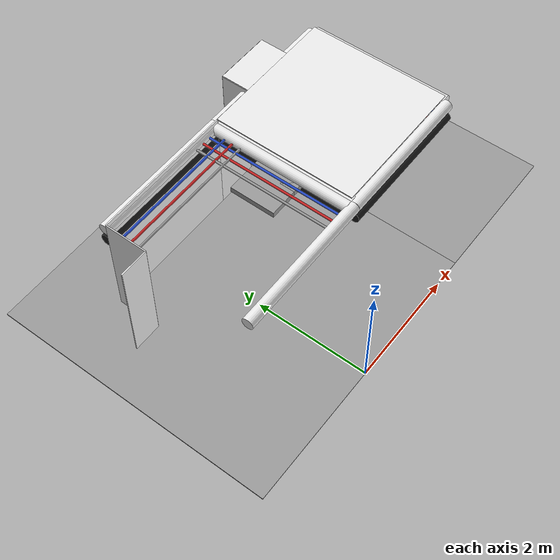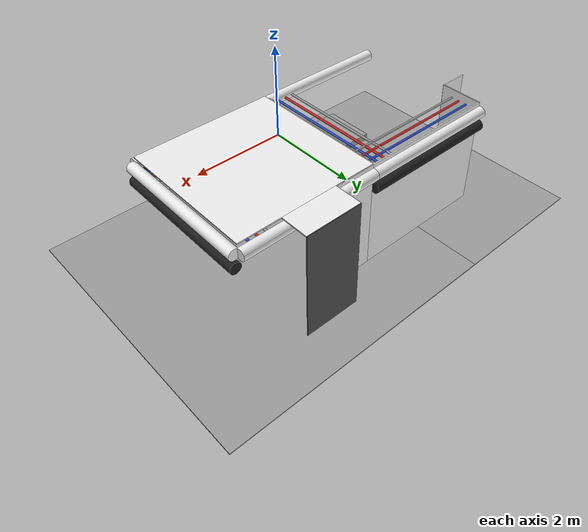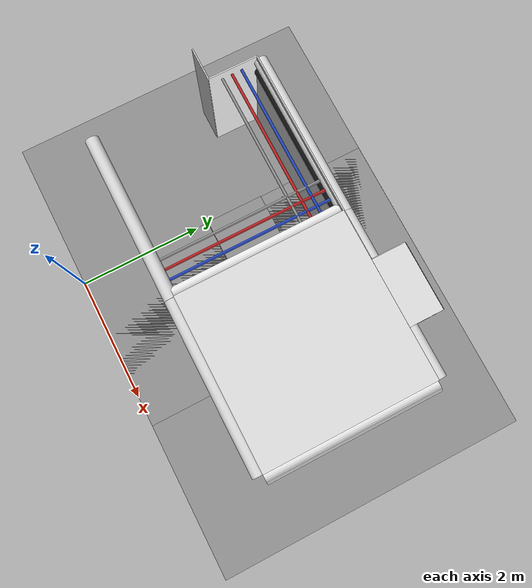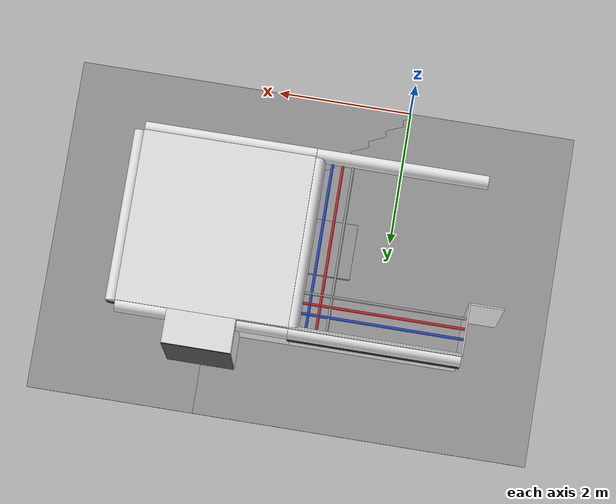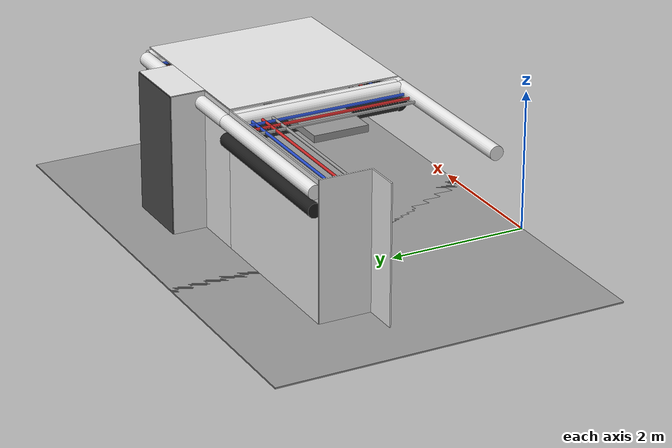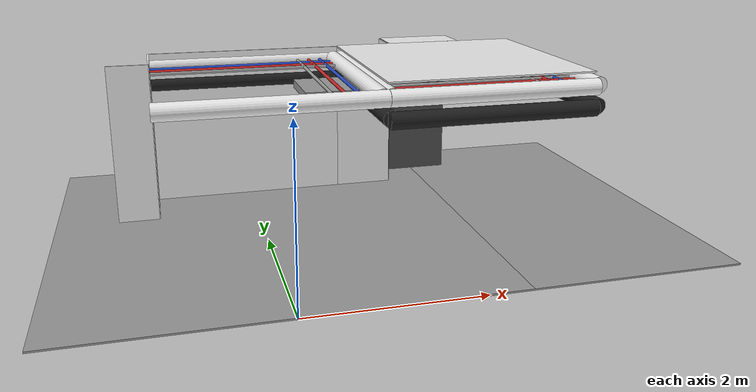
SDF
<sdf version="1.6">
 <world name="default">
  <model name="wall_front_0_1_0_2">
   <static>1</static>
   <pose>0.0 3.75 1.0 0.0 0.0 0.0</pose>
   <link name="link">
    <collision name="collision"><geometry><box><size>2.5 0.02 2.0</size></box></geometry></collision>
    <visual name="visual">
     <material>
      <script><name>Gazebo/White</name><uri>file://media/materials/scripts/gazebo.material</uri></script>
     </material>
     <geometry><box><size>2.5 0.02 2.0</size></box></geometry>
    </visual>
   </link>
  </model>
  <model name="ceiling_1_0_1_1_2">
   <pose>1.0 2.5 1.7 0.0 0.0 1.57</pose>
   <link name="link_1">
    <visual name="visual">
     <geometry><box><size>0.8 1 0.1</size></box></geometry>
     <material>
      <script><uri>file://media/materials/scripts/gazebo.material</uri><name>Gazebo/Grey</name></script>
     </material>
    </visual>
    <collision name="collision"><geometry><box><size>0.8 1 0.1</size></box></geometry></collision>
   </link>
   <static>1</static>
  </model>
  <model name="white_pipe_right_0_1_0_2">
   <static>1</static>
   <pose>0.0 2.5 1.84 0.0 0.0 0.0</pose>
   <link name="link_0">
    <visual name="visual">
     <pose>1.3 0 0 1.57 0 0</pose>
     <geometry><cylinder><radius>0.1</radius><length>2.5</length></cylinder></geometry>
     <material>
      <script><uri>file://media/materials/scripts/gazebo.material</uri><name>Gazebo/White</name></script>
     </material>
    </visual>
    <collision name="collision">
     <pose>1.3 0 0 1.57 0 0</pose>
     <geometry><cylinder><radius>0.1</radius><length>2.5</length></cylinder></geometry>
    </collision>
   </link>
  </model>
  <model name="black_pipe_right_0_1_0_2">
   <static>1</static>
   <pose>0.0 2.5 1.84 0.0 0.0 0.0</pose>
   <link name="link_0">
    <visual name="visual">
     <pose>1.3 0 -0.25 1.57 0 0</pose>
     <geometry><cylinder><radius>0.1</radius><length>2.5</length></cylinder></geometry>
     <material>
      <script><uri>file://media/materials/scripts/gazebo.material</uri><name>Gazebo/Black</name></script>
     </material>
    </visual>
    <collision name="collision">
     <pose>1.3 0 -0.25 1.57 0 0</pose>
     <geometry><cylinder><radius>0.1</radius><length>2.5</length></cylinder></geometry>
    </collision>
   </link>
  </model>
  <model name="grey_pipe_right_0_1_0_2">
   <static>1</static>
   <pose>0.0 2.5 1.84 0.0 0.0 0.0</pose>
   <link name="link_0">
    <visual name="visual">
     <pose>0.7 0 0 1.57 0 0</pose>
     <geometry><cylinder><radius>0.02</radius><length>2.5</length></cylinder></geometry>
     <material>
      <script><uri>file://media/materials/scripts/gazebo.material</uri><name>Gazebo/Grey</name></script>
     </material>
    </visual>
    <collision name="collision">
     <pose>0.7 0 0 1.57 0 0</pose>
     <geometry><cylinder><radius>0.02</radius><length>2.5</length></cylinder></geometry>
    </collision>
   </link>
  </model>
  <model name="red_pipe_right_0_1_0_2">
   <static>1</static>
   <pose>0.0 2.5 1.84 0.0 0.0 0.0</pose>
   <link name="link_0">
    <visual name="visual">
     <pose>0.85 0 0 1.57 0 0</pose>
     <geometry><cylinder><radius>0.02</radius><length>2.5</length></cylinder></geometry>
     <material>
      <script><uri>file://media/materials/scripts/gazebo.material</uri><name>Gazebo/Red</name></script>
     </material>
    </visual>
    <collision name="collision">
     <pose>0.85 0 0 1.57 0 0</pose>
     <geometry><cylinder><radius>0.02</radius><length>2.5</length></cylinder></geometry>
    </collision>
   </link>
  </model>
  <model name="blue_pipe_right_0_1_0_2">
   <static>1</static>
   <pose>0.0 2.5 1.84 0.0 0.0 0.0</pose>
   <link name="link_0">
    <visual name="visual">
     <pose>1 0 0 1.57 0 0</pose>
     <geometry><cylinder><radius>0.02</radius><length>2.5</length></cylinder></geometry>
     <material>
      <script><uri>file://media/materials/scripts/gazebo.material</uri><name>Gazebo/Blue</name></script>
     </material>
    </visual>
    <collision name="collision">
     <pose>1 0 0 1.57 0 0</pose>
     <geometry><cylinder><radius>0.02</radius><length>2.5</length></cylinder></geometry>
    </collision>
   </link>
  </model>
  <model name="white_pipe_left_1_0_1_0_2">
   <static>1</static>
   <pose>0.0 2.5 1.84 0.0 0.0 1.57</pose>
   <link name="link_0">
    <visual name="visual">
     <pose>-1.3 0 0 1.57 0 0</pose>
     <geometry><cylinder><radius>0.1</radius><length>2.5</length></cylinder></geometry>
     <material>
      <script><uri>file://media/materials/scripts/gazebo.material</uri><name>Gazebo/White</name></script>
     </material>
    </visual>
    <collision name="collision">
     <pose>-1.3 0 0 1.57 0 0</pose>
     <geometry><cylinder><radius>0.1</radius><length>2.5</length></cylinder></geometry>
    </collision>
   </link>
  </model>
  <model name="white_pipe_right_1_0_1_0_2">
   <static>1</static>
   <pose>0.0 2.5 1.84 0.0 0.0 1.57</pose>
   <link name="link_0">
    <visual name="visual">
     <pose>1.3 0 0 1.57 0 0</pose>
     <geometry><cylinder><radius>0.1</radius><length>2.5</length></cylinder></geometry>
     <material>
      <script><uri>file://media/materials/scripts/gazebo.material</uri><name>Gazebo/White</name></script>
     </material>
    </visual>
    <collision name="collision">
     <pose>1.3 0 0 1.57 0 0</pose>
     <geometry><cylinder><radius>0.1</radius><length>2.5</length></cylinder></geometry>
    </collision>
   </link>
  </model>
  <model name="black_pipe_right_1_0_1_0_2">
   <static>1</static>
   <pose>0.0 2.5 1.84 0.0 0.0 1.57</pose>
   <link name="link_0">
    <visual name="visual">
     <pose>1.3 0 -0.25 1.57 0 0</pose>
     <geometry><cylinder><radius>0.1</radius><length>2.5</length></cylinder></geometry>
     <material>
      <script><uri>file://media/materials/scripts/gazebo.material</uri><name>Gazebo/Black</name></script>
     </material>
    </visual>
    <collision name="collision">
     <pose>1.3 0 -0.25 1.57 0 0</pose>
     <geometry><cylinder><radius>0.1</radius><length>2.5</length></cylinder></geometry>
    </collision>
   </link>
  </model>
  <model name="grey_pipe_right_1_0_1_0_2">
   <static>1</static>
   <pose>0.0 2.5 1.84 0.0 0.0 1.57</pose>
   <link name="link_0">
    <visual name="visual">
     <pose>0.7 0 0 1.57 0 0</pose>
     <geometry><cylinder><radius>0.02</radius><length>2.5</length></cylinder></geometry>
     <material>
      <script><uri>file://media/materials/scripts/gazebo.material</uri><name>Gazebo/Grey</name></script>
     </material>
    </visual>
    <collision name="collision">
     <pose>0.7 0 0 1.57 0 0</pose>
     <geometry><cylinder><radius>0.02</radius><length>2.5</length></cylinder></geometry>
    </collision>
   </link>
  </model>
  <model name="red_pipe_right_1_0_1_0_2">
   <static>1</static>
   <pose>0.0 2.5 1.84 0.0 0.0 1.57</pose>
   <link name="link_0">
    <visual name="visual">
     <pose>0.85 0 0 1.57 0 0</pose>
     <geometry><cylinder><radius>0.02</radius><length>2.5</length></cylinder></geometry>
     <material>
      <script><uri>file://media/materials/scripts/gazebo.material</uri><name>Gazebo/Red</name></script>
     </material>
    </visual>
    <collision name="collision">
     <pose>0.85 0 0 1.57 0 0</pose>
     <geometry><cylinder><radius>0.02</radius><length>2.5</length></cylinder></geometry>
    </collision>
   </link>
  </model>
  <model name="blue_pipe_right_1_0_1_0_2">
   <static>1</static>
   <pose>0.0 2.5 1.84 0.0 0.0 1.57</pose>
   <link name="link_0">
    <visual name="visual">
     <pose>1 0 0 1.57 0 0</pose>
     <geometry><cylinder><radius>0.02</radius><length>2.5</length></cylinder></geometry>
     <material>
      <script><uri>file://media/materials/scripts/gazebo.material</uri><name>Gazebo/Blue</name></script>
     </material>
    </visual>
    <collision name="collision">
     <pose>1 0 0 1.57 0 0</pose>
     <geometry><cylinder><radius>0.02</radius><length>2.5</length></cylinder></geometry>
    </collision>
   </link>
  </model>
  <model name="wall_left_front_left_0_1_0_2">
   <static>1</static>
   <pose>-1.25 3.375 1.0 0.0 0.0 1.57</pose>
   <link name="link">
    <collision name="collision"><geometry><box><size>0.75 0.02 2.0</size></box></geometry></collision>
    <visual name="visual">
     <material>
      <script><name>Gazebo/White</name><uri>file://media/materials/scripts/gazebo.material</uri></script>
     </material>
     <geometry><box><size>0.75 0.02 2.0</size></box></geometry>
    </visual>
   </link>
  </model>
  <model name="wall_left_inside_left_0_1_0_2">
   <static>1</static>
   <pose>-1.5 3.0 1.0 0.0 0.0 0.0</pose>
   <link name="link">
    <collision name="collision"><geometry><box><size>0.5 0.02 2</size></box></geometry></collision>
    <visual name="visual">
     <material>
      <script><name>Gazebo/White</name><uri>file://media/materials/scripts/gazebo.material</uri></script>
     </material>
     <geometry><box><size>0.5 0.02 2</size></box></geometry>
    </visual>
   </link>
  </model>
  <model name="wall_bottom_0_1_0_2">
   <static>1</static>
   <pose>0.0 2.5 0.0 0.0 0.0 0.0</pose>
   <link name="link">
    <collision name="collision"><geometry><box><size>5.0 5.0 0.02</size></box></geometry></collision>
    <visual name="visual">
     <material>
      <script><name>Gazebo/Grey</name><uri>file://media/materials/scripts/gazebo.material</uri></script>
     </material>
     <geometry><box><size>5.0 5.0 0.02</size></box></geometry>
    </visual>
   </link>
  </model>
  <model name="wall_top_1_1_0_2">
   <static>1</static>
   <pose>2.5 2.5 2.0 1.57 0.0 -1.57</pose>
   <link name="link">
    <collision name="collision"><geometry><box><size>2.5 0.02 2.5</size></box></geometry></collision>
    <visual name="visual">
     <material>
      <script><name>Gazebo/White</name><uri>file://media/materials/scripts/gazebo.material</uri></script>
     </material>
     <geometry><box><size>2.5 0.02 2.5</size></box></geometry>
    </visual>
   </link>
  </model>
  <model name="ceiling_1_1_1_0_2">
   <pose>1.5 2.5 1.7 0.0 0.0 -1.57</pose>
   <link name="link_1">
    <visual name="visual">
     <geometry><box><size>0.8 1 0.1</size></box></geometry>
     <material>
      <script><uri>file://media/materials/scripts/gazebo.material</uri><name>Gazebo/Grey</name></script>
     </material>
    </visual>
    <collision name="collision"><geometry><box><size>0.8 1 0.1</size></box></geometry></collision>
   </link>
   <static>1</static>
  </model>
  <model name="white_pipe_left_1_1_0_2">
   <static>1</static>
   <pose>2.5 2.5 1.84 0.0 0.0 -1.57</pose>
   <link name="link_0">
    <visual name="visual">
     <pose>-1.3 0 0 1.57 0 0</pose>
     <geometry><cylinder><radius>0.1</radius><length>2.5</length></cylinder></geometry>
     <material>
      <script><uri>file://media/materials/scripts/gazebo.material</uri><name>Gazebo/White</name></script>
     </material>
    </visual>
    <collision name="collision">
     <pose>-1.3 0 0 1.57 0 0</pose>
     <geometry><cylinder><radius>0.1</radius><length>2.5</length></cylinder></geometry>
    </collision>
   </link>
  </model>
  <model name="white_pipe_right_1_1_0_2">
   <static>1</static>
   <pose>2.5 2.5 1.84 0.0 0.0 -1.57</pose>
   <link name="link_0">
    <visual name="visual">
     <pose>1.3 0 0 1.57 0 0</pose>
     <geometry><cylinder><radius>0.1</radius><length>2.5</length></cylinder></geometry>
     <material>
      <script><uri>file://media/materials/scripts/gazebo.material</uri><name>Gazebo/White</name></script>
     </material>
    </visual>
    <collision name="collision">
     <pose>1.3 0 0 1.57 0 0</pose>
     <geometry><cylinder><radius>0.1</radius><length>2.5</length></cylinder></geometry>
    </collision>
   </link>
  </model>
  <model name="black_pipe_right_1_1_0_2">
   <static>1</static>
   <pose>2.5 2.5 1.84 0.0 0.0 -1.57</pose>
   <link name="link_0">
    <visual name="visual">
     <pose>1.3 0 -0.25 1.57 0 0</pose>
     <geometry><cylinder><radius>0.1</radius><length>2.5</length></cylinder></geometry>
     <material>
      <script><uri>file://media/materials/scripts/gazebo.material</uri><name>Gazebo/Black</name></script>
     </material>
    </visual>
    <collision name="collision">
     <pose>1.3 0 -0.25 1.57 0 0</pose>
     <geometry><cylinder><radius>0.1</radius><length>2.5</length></cylinder></geometry>
    </collision>
   </link>
  </model>
  <model name="grey_pipe_right_1_1_0_2">
   <static>1</static>
   <pose>2.5 2.5 1.84 0.0 0.0 -1.57</pose>
   <link name="link_0">
    <visual name="visual">
     <pose>0.7 0 0 1.57 0 0</pose>
     <geometry><cylinder><radius>0.02</radius><length>2.5</length></cylinder></geometry>
     <material>
      <script><uri>file://media/materials/scripts/gazebo.material</uri><name>Gazebo/Grey</name></script>
     </material>
    </visual>
    <collision name="collision">
     <pose>0.7 0 0 1.57 0 0</pose>
     <geometry><cylinder><radius>0.02</radius><length>2.5</length></cylinder></geometry>
    </collision>
   </link>
  </model>
  <model name="red_pipe_right_1_1_0_2">
   <static>1</static>
   <pose>2.5 2.5 1.84 0.0 0.0 -1.57</pose>
   <link name="link_0">
    <visual name="visual">
     <pose>0.85 0 0 1.57 0 0</pose>
     <geometry><cylinder><radius>0.02</radius><length>2.5</length></cylinder></geometry>
     <material>
      <script><uri>file://media/materials/scripts/gazebo.material</uri><name>Gazebo/Red</name></script>
     </material>
    </visual>
    <collision name="collision">
     <pose>0.85 0 0 1.57 0 0</pose>
     <geometry><cylinder><radius>0.02</radius><length>2.5</length></cylinder></geometry>
    </collision>
   </link>
  </model>
  <model name="blue_pipe_right_1_1_0_2">
   <static>1</static>
   <pose>2.5 2.5 1.84 0.0 0.0 -1.57</pose>
   <link name="link_0">
    <visual name="visual">
     <pose>1 0 0 1.57 0 0</pose>
     <geometry><cylinder><radius>0.02</radius><length>2.5</length></cylinder></geometry>
     <material>
      <script><uri>file://media/materials/scripts/gazebo.material</uri><name>Gazebo/Blue</name></script>
     </material>
    </visual>
    <collision name="collision">
     <pose>1 0 0 1.57 0 0</pose>
     <geometry><cylinder><radius>0.02</radius><length>2.5</length></cylinder></geometry>
    </collision>
   </link>
  </model>
  <model name="white_pipe_left_1_1_1_0_2">
   <static>1</static>
   <pose>2.5 2.5 1.84 0.0 0.0 0.0</pose>
   <link name="link_0">
    <visual name="visual">
     <pose>-1.3 0 0 1.57 0 0</pose>
     <geometry><cylinder><radius>0.1</radius><length>2.5</length></cylinder></geometry>
     <material>
      <script><uri>file://media/materials/scripts/gazebo.material</uri><name>Gazebo/White</name></script>
     </material>
    </visual>
    <collision name="collision">
     <pose>-1.3 0 0 1.57 0 0</pose>
     <geometry><cylinder><radius>0.1</radius><length>2.5</length></cylinder></geometry>
    </collision>
   </link>
  </model>
  <model name="white_pipe_right_1_1_1_0_2">
   <static>1</static>
   <pose>2.5 2.5 1.84 0.0 0.0 0.0</pose>
   <link name="link_0">
    <visual name="visual">
     <pose>1.3 0 0 1.57 0 0</pose>
     <geometry><cylinder><radius>0.1</radius><length>2.5</length></cylinder></geometry>
     <material>
      <script><uri>file://media/materials/scripts/gazebo.material</uri><name>Gazebo/White</name></script>
     </material>
    </visual>
    <collision name="collision">
     <pose>1.3 0 0 1.57 0 0</pose>
     <geometry><cylinder><radius>0.1</radius><length>2.5</length></cylinder></geometry>
    </collision>
   </link>
  </model>
  <model name="black_pipe_right_1_1_1_0_2">
   <static>1</static>
   <pose>2.5 2.5 1.84 0.0 0.0 0.0</pose>
   <link name="link_0">
    <visual name="visual">
     <pose>1.3 0 -0.25 1.57 0 0</pose>
     <geometry><cylinder><radius>0.1</radius><length>2.5</length></cylinder></geometry>
     <material>
      <script><uri>file://media/materials/scripts/gazebo.material</uri><name>Gazebo/Black</name></script>
     </material>
    </visual>
    <collision name="collision">
     <pose>1.3 0 -0.25 1.57 0 0</pose>
     <geometry><cylinder><radius>0.1</radius><length>2.5</length></cylinder></geometry>
    </collision>
   </link>
  </model>
  <model name="grey_pipe_right_1_1_1_0_2">
   <static>1</static>
   <pose>2.5 2.5 1.84 0.0 0.0 0.0</pose>
   <link name="link_0">
    <visual name="visual">
     <pose>0.7 0 0 1.57 0 0</pose>
     <geometry><cylinder><radius>0.02</radius><length>2.5</length></cylinder></geometry>
     <material>
      <script><uri>file://media/materials/scripts/gazebo.material</uri><name>Gazebo/Grey</name></script>
     </material>
    </visual>
    <collision name="collision">
     <pose>0.7 0 0 1.57 0 0</pose>
     <geometry><cylinder><radius>0.02</radius><length>2.5</length></cylinder></geometry>
    </collision>
   </link>
  </model>
  <model name="red_pipe_right_1_1_1_0_2">
   <static>1</static>
   <pose>2.5 2.5 1.84 0.0 0.0 0.0</pose>
   <link name="link_0">
    <visual name="visual">
     <pose>0.85 0 0 1.57 0 0</pose>
     <geometry><cylinder><radius>0.02</radius><length>2.5</length></cylinder></geometry>
     <material>
      <script><uri>file://media/materials/scripts/gazebo.material</uri><name>Gazebo/Red</name></script>
     </material>
    </visual>
    <collision name="collision">
     <pose>0.85 0 0 1.57 0 0</pose>
     <geometry><cylinder><radius>0.02</radius><length>2.5</length></cylinder></geometry>
    </collision>
   </link>
  </model>
  <model name="blue_pipe_right_1_1_1_0_2">
   <static>1</static>
   <pose>2.5 2.5 1.84 0.0 0.0 0.0</pose>
   <link name="link_0">
    <visual name="visual">
     <pose>1 0 0 1.57 0 0</pose>
     <geometry><cylinder><radius>0.02</radius><length>2.5</length></cylinder></geometry>
     <material>
      <script><uri>file://media/materials/scripts/gazebo.material</uri><name>Gazebo/Blue</name></script>
     </material>
    </visual>
    <collision name="collision">
     <pose>1 0 0 1.57 0 0</pose>
     <geometry><cylinder><radius>0.02</radius><length>2.5</length></cylinder></geometry>
    </collision>
   </link>
  </model>
  <model name="wall_left_front_right_1_1_0_2">
   <static>1</static>
   <pose>1.625 3.75 1.0 0.0 0.0 0.0</pose>
   <link name="link">
    <collision name="collision"><geometry><box><size>0.75 0.02 2.0</size></box></geometry></collision>
    <visual name="visual">
     <material>
      <script><name>Gazebo/White</name><uri>file://media/materials/scripts/gazebo.material</uri></script>
     </material>
     <geometry><box><size>0.75 0.02 2.0</size></box></geometry>
    </visual>
   </link>
  </model>
  <model name="wall_left_front_up_1_1_0_2">
   <static>1</static>
   <pose>2.5 3.75 2.0 0.0 0.0 0.0</pose>
   <link name="link">
    <collision name="collision"><geometry><box><size>1.0 0.02 0.001</size></box></geometry></collision>
    <visual name="visual">
     <material>
      <script><name>Gazebo/White</name><uri>file://media/materials/scripts/gazebo.material</uri></script>
     </material>
     <geometry><box><size>1.0 0.02 0.001</size></box></geometry>
    </visual>
   </link>
  </model>
  <model name="wall_left_inside_back_1_1_0_2">
   <static>1</static>
   <pose>2.5 4.25 1.0 0.0 0.0 0.0</pose>
   <link name="link">
    <collision name="collision"><geometry><box><size>1 0.02 2</size></box></geometry></collision>
    <visual name="visual">
     <material>
      <script><name>Gazebo/DarkGrey</name><uri>file://media/materials/scripts/gazebo.material</uri></script>
     </material>
     <geometry><box><size>1 0.02 2</size></box></geometry>
    </visual>
   </link>
  </model>
  <model name="wall_left_inside_right_1_1_0_2">
   <static>1</static>
   <pose>2.0 4.0 1.0 0.0 0.0 -1.57</pose>
   <link name="link">
    <collision name="collision"><geometry><box><size>0.5 0.02 2</size></box></geometry></collision>
    <visual name="visual">
     <material>
      <script><name>Gazebo/White</name><uri>file://media/materials/scripts/gazebo.material</uri></script>
     </material>
     <geometry><box><size>0.5 0.02 2</size></box></geometry>
    </visual>
   </link>
  </model>
  <model name="wall_left_inside_top_1_1_0_2">
   <static>1</static>
   <pose>2.5 4.0 2.0 1.57 0.0 0.0</pose>
   <link name="link">
    <collision name="collision"><geometry><box><size>1 0.02 0.5</size></box></geometry></collision>
    <visual name="visual">
     <material>
      <script><name>Gazebo/White</name><uri>file://media/materials/scripts/gazebo.material</uri></script>
     </material>
     <geometry><box><size>1 0.02 0.5</size></box></geometry>
    </visual>
   </link>
  </model>
  <model name="wall_bottom_1_1_0_2">
   <static>1</static>
   <pose>2.5 2.5 0.0 0.0 0.0 -1.57</pose>
   <link name="link">
    <collision name="collision"><geometry><box><size>5.0 5.0 0.02</size></box></geometry></collision>
    <visual name="visual">
     <material>
      <script><name>Gazebo/Grey</name><uri>file://media/materials/scripts/gazebo.material</uri></script>
     </material>
     <geometry><box><size>5.0 5.0 0.02</size></box></geometry>
    </visual>
   </link>
  </model>
 </world>
</sdf>
